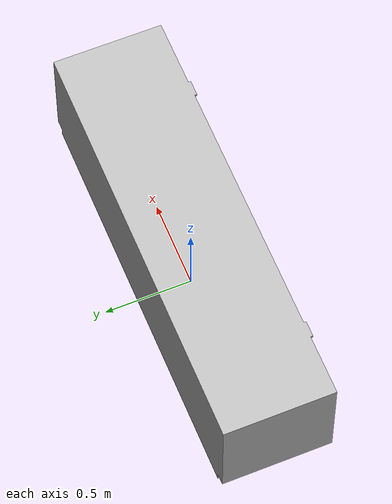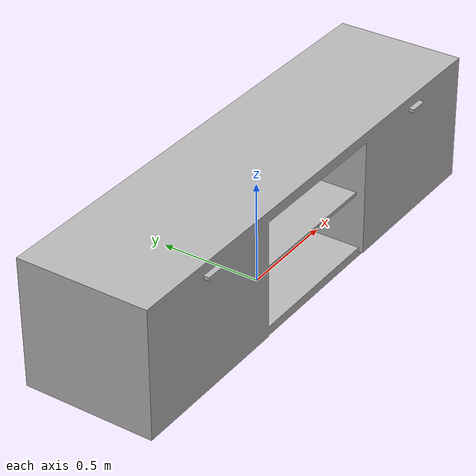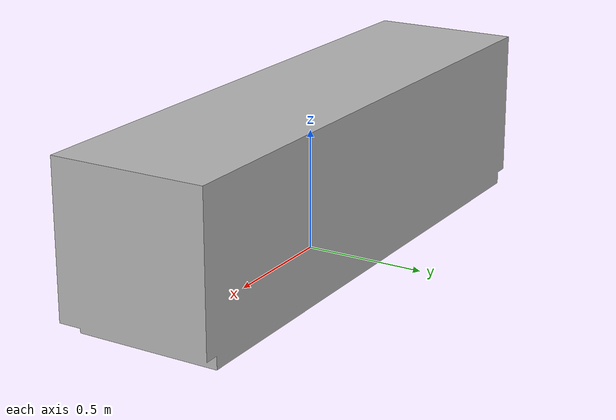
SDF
<?xml version='1.0' encoding='utf-8'?>
<sdf version="1.6">
  <model name="TVStand">
   <static>true</static>
    <link name="body">
      <pose>0 0 0 0 0 0</pose>

      <visual name="visual">
        <geometry>
          <mesh>
            <uri>model://TVStand/meshes/TVStand.obj</uri>
            <scale>1.5 1.5 1.5</scale>
          </mesh>
        </geometry>
      </visual>

      <collision name="collision">
        <geometry>
          <mesh>
            <uri>model://TVStand/meshes/TVStand_Col.obj</uri>
            <scale>1.5 1.5 1.5</scale>
          </mesh>
        </geometry>
      </collision>

    </link>
  </model>
</sdf>
